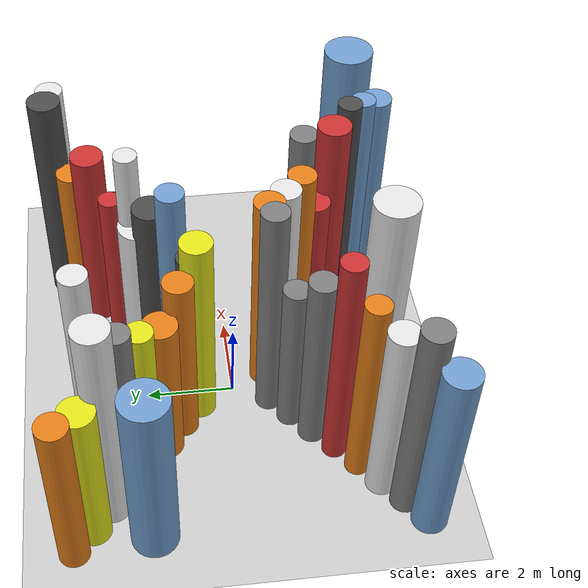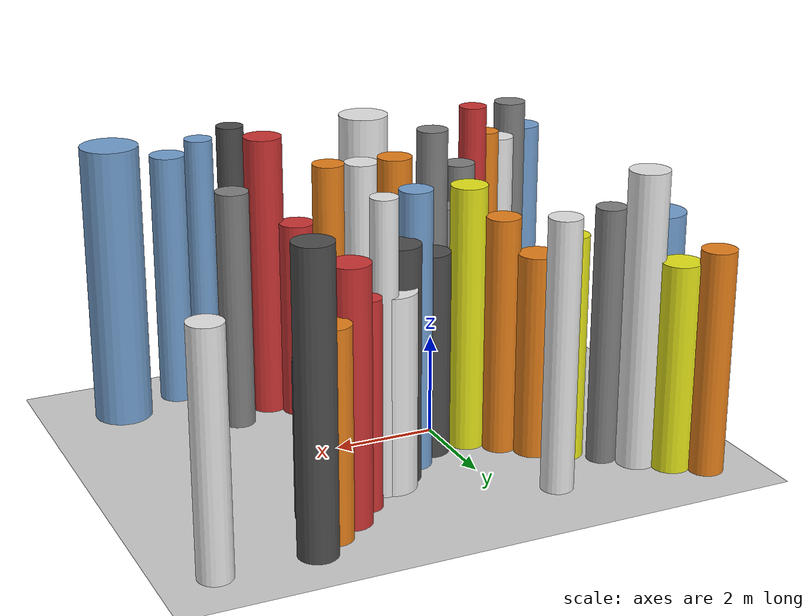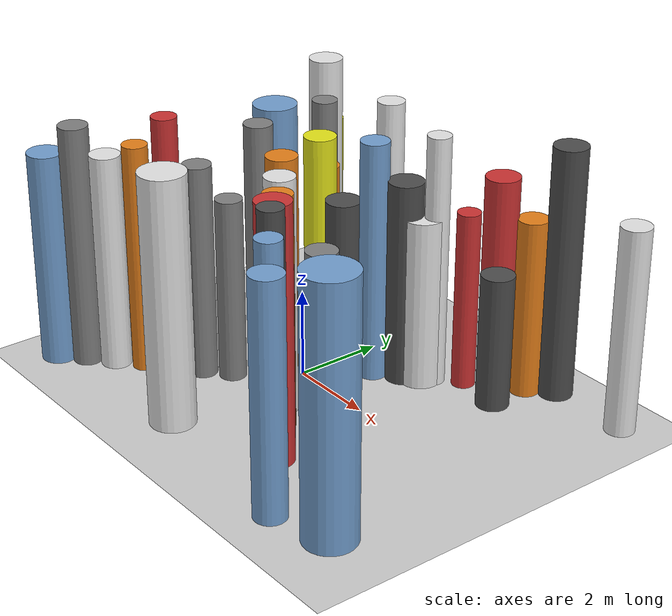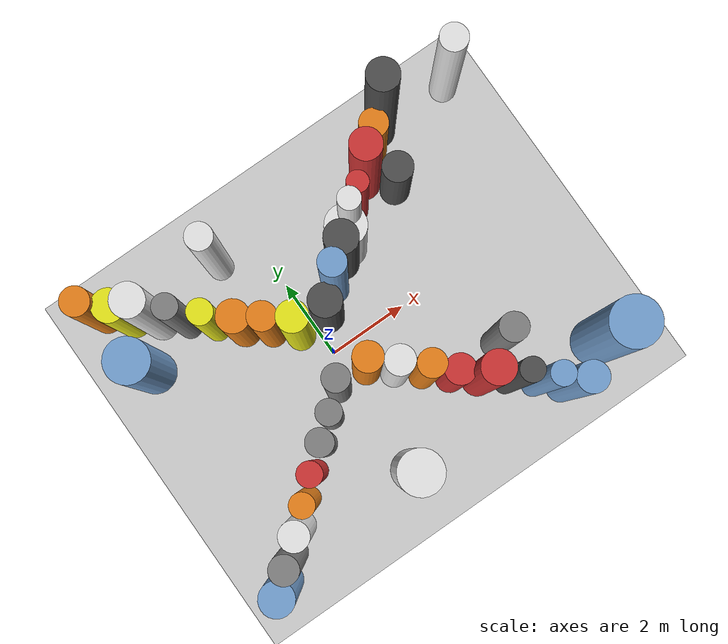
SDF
<?xml version='1.0'?>
<sdf version='1.6'>
  <world name='routeA_rl_v1__dense_recovery__rl_val__bottleneck_corridor__000102'>
    <!-- Sun light -->
    <light name='sun' type='directional'>
      <cast_shadows>1</cast_shadows>
      <pose>0 0 10 0 0 0</pose>
      <diffuse>0.8 0.8 0.8 1</diffuse>
      <specular>0.2 0.2 0.2 1</specular>
      <attenuation>
        <range>1000</range>
        <constant>0.9</constant>
        <linear>0.01</linear>
        <quadratic>0.001</quadratic>
      </attenuation>
      <direction>-0.5 0.1 -0.9</direction>
    </light>

    <!-- Ground plane -->
    <model name='ground_plane'>
      <static>1</static>
      <link name='link'>
        <collision name='collision'>
          <geometry>
            <plane>
              <normal>0 0 1</normal>
              <size>100 100</size>
            </plane>
          </geometry>
          <surface>
            <contact>
              <collide_bitmask>65535</collide_bitmask>
              <ode/>
            </contact>
            <friction>
              <ode>
                <mu>100</mu>
                <mu2>50</mu2>
              </ode>
              <torsional><ode/></torsional>
            </friction>
            <bounce/>
          </surface>
          <max_contacts>10</max_contacts>
        </collision>
        <visual name='visual'>
          <cast_shadows>0</cast_shadows>
          <geometry>
            <plane>
              <normal>0 0 1</normal>
              <size>100 100</size>
            </plane>
          </geometry>
          <material>
            <script>
              <uri>file://media/materials/scripts/gazebo.material</uri>
              <n>Gazebo/Grey</n>
            </script>
          </material>
        </visual>
      </link>
    </model>

    <!-- Environment -->
    <magnetic_field>6e-06 2.3e-05 -4.2e-05</magnetic_field>
    <atmosphere type='adiabatic'/>
    <physics name='default_physics' default='0' type='ode'>
      <gravity>0 0 -9.8</gravity>
      <max_step_size>0.004</max_step_size>
      <real_time_factor>1</real_time_factor>
      <real_time_update_rate>250</real_time_update_rate>
    </physics>
    <scene>
      <ambient>0.4 0.4 0.4 1</ambient>
      <background>0.7 0.7 0.7 1</background>
      <shadows>1</shadows>
    </scene>
    <wind/>
    <spherical_coordinates>
      <surface_model>EARTH_WGS84</surface_model>
      <latitude_deg>0</latitude_deg>
      <longitude_deg>0</longitude_deg>
      <elevation>0</elevation>
      <heading_deg>0</heading_deg>
    </spherical_coordinates>

    <!-- ============ OBSTACLES (40) ============ -->
    <model name='funnel_l_0'>
      <static>1</static>
      <link name='link'>
        <visual name='visual'>
          <geometry>
            <cylinder>
              <radius>0.3968</radius>
              <length>4.9211</length>
            </cylinder>
          </geometry>
          <material>
            <script>
              <n>Gazebo/Blue</n>
              <uri>file://media/materials/scripts/gazebo.material</uri>
            </script>
            <ambient>0.447 0.624 0.812 1</ambient>
          </material>
        </visual>
        <collision name='collision'>
          <geometry>
            <cylinder>
              <radius>0.3968</radius>
              <length>4.9211</length>
            </cylinder>
          </geometry>
          <max_contacts>10</max_contacts>
          <surface>
            <contact><ode/></contact>
            <bounce/>
            <friction>
              <ode><mu>1</mu><mu2>1</mu2></ode>
              <torsional><ode/></torsional>
            </friction>
          </surface>
        </collision>
      </link>
      <pose>-4.0000 -3.8000 2.4605 0 0 0.0000</pose>
    </model>

    <model name='funnel_r_0'>
      <static>1</static>
      <link name='link'>
        <visual name='visual'>
          <geometry>
            <cylinder>
              <radius>0.3395</radius>
              <length>4.4449</length>
            </cylinder>
          </geometry>
          <material>
            <script>
              <n>Gazebo/Orange</n>
              <uri>file://media/materials/scripts/gazebo.material</uri>
            </script>
            <ambient>0.9 0.5 0.1 1</ambient>
          </material>
        </visual>
        <collision name='collision'>
          <geometry>
            <cylinder>
              <radius>0.3395</radius>
              <length>4.4449</length>
            </cylinder>
          </geometry>
          <max_contacts>10</max_contacts>
          <surface>
            <contact><ode/></contact>
            <bounce/>
            <friction>
              <ode><mu>1</mu><mu2>1</mu2></ode>
              <torsional><ode/></torsional>
            </friction>
          </surface>
        </collision>
      </link>
      <pose>-4.0000 3.8000 2.2225 0 0 0.0000</pose>
    </model>

    <model name='funnel_l_1'>
      <static>1</static>
      <link name='link'>
        <visual name='visual'>
          <geometry>
            <cylinder>
              <radius>0.3291</radius>
              <length>5.5863</length>
            </cylinder>
          </geometry>
          <material>
            <script>
              <n>Gazebo/Grey</n>
              <uri>file://media/materials/scripts/gazebo.material</uri>
            </script>
            <ambient>0.5 0.5 0.5 1</ambient>
          </material>
        </visual>
        <collision name='collision'>
          <geometry>
            <cylinder>
              <radius>0.3291</radius>
              <length>5.5863</length>
            </cylinder>
          </geometry>
          <max_contacts>10</max_contacts>
          <surface>
            <contact><ode/></contact>
            <bounce/>
            <friction>
              <ode><mu>1</mu><mu2>1</mu2></ode>
              <torsional><ode/></torsional>
            </friction>
          </surface>
        </collision>
      </link>
      <pose>-3.4857 -3.3714 2.7931 0 0 0.0000</pose>
    </model>

    <model name='funnel_r_1'>
      <static>1</static>
      <link name='link'>
        <visual name='visual'>
          <geometry>
            <cylinder>
              <radius>0.3878</radius>
              <length>4.1424</length>
            </cylinder>
          </geometry>
          <material>
            <script>
              <n>Gazebo/Yellow</n>
              <uri>file://media/materials/scripts/gazebo.material</uri>
            </script>
            <ambient>0.9 0.9 0.1 1</ambient>
          </material>
        </visual>
        <collision name='collision'>
          <geometry>
            <cylinder>
              <radius>0.3878</radius>
              <length>4.1424</length>
            </cylinder>
          </geometry>
          <max_contacts>10</max_contacts>
          <surface>
            <contact><ode/></contact>
            <bounce/>
            <friction>
              <ode><mu>1</mu><mu2>1</mu2></ode>
              <torsional><ode/></torsional>
            </friction>
          </surface>
        </collision>
      </link>
      <pose>-3.4857 3.3714 2.0712 0 0 0.0000</pose>
    </model>

    <model name='funnel_l_2'>
      <static>1</static>
      <link name='link'>
        <visual name='visual'>
          <geometry>
            <cylinder>
              <radius>0.3425</radius>
              <length>4.9917</length>
            </cylinder>
          </geometry>
          <material>
            <script>
              <n>Gazebo/White</n>
              <uri>file://media/materials/scripts/gazebo.material</uri>
            </script>
            <ambient>0.9 0.9 0.9 1</ambient>
          </material>
        </visual>
        <collision name='collision'>
          <geometry>
            <cylinder>
              <radius>0.3425</radius>
              <length>4.9917</length>
            </cylinder>
          </geometry>
          <max_contacts>10</max_contacts>
          <surface>
            <contact><ode/></contact>
            <bounce/>
            <friction>
              <ode><mu>1</mu><mu2>1</mu2></ode>
              <torsional><ode/></torsional>
            </friction>
          </surface>
        </collision>
      </link>
      <pose>-2.9714 -2.9429 2.4958 0 0 0.0000</pose>
    </model>

    <model name='funnel_r_2'>
      <static>1</static>
      <link name='link'>
        <visual name='visual'>
          <geometry>
            <cylinder>
              <radius>0.3866</radius>
              <length>5.8515</length>
            </cylinder>
          </geometry>
          <material>
            <script>
              <n>Gazebo/White</n>
              <uri>file://media/materials/scripts/gazebo.material</uri>
            </script>
            <ambient>0.9 0.9 0.9 1</ambient>
          </material>
        </visual>
        <collision name='collision'>
          <geometry>
            <cylinder>
              <radius>0.3866</radius>
              <length>5.8515</length>
            </cylinder>
          </geometry>
          <max_contacts>10</max_contacts>
          <surface>
            <contact><ode/></contact>
            <bounce/>
            <friction>
              <ode><mu>1</mu><mu2>1</mu2></ode>
              <torsional><ode/></torsional>
            </friction>
          </surface>
        </collision>
      </link>
      <pose>-2.9714 2.9429 2.9257 0 0 0.0000</pose>
    </model>

    <model name='funnel_l_3'>
      <static>1</static>
      <link name='link'>
        <visual name='visual'>
          <geometry>
            <cylinder>
              <radius>0.2815</radius>
              <length>5.2719</length>
            </cylinder>
          </geometry>
          <material>
            <script>
              <n>Gazebo/Orange</n>
              <uri>file://media/materials/scripts/gazebo.material</uri>
            </script>
            <ambient>0.9 0.5 0.1 1</ambient>
          </material>
        </visual>
        <collision name='collision'>
          <geometry>
            <cylinder>
              <radius>0.2815</radius>
              <length>5.2719</length>
            </cylinder>
          </geometry>
          <max_contacts>10</max_contacts>
          <surface>
            <contact><ode/></contact>
            <bounce/>
            <friction>
              <ode><mu>1</mu><mu2>1</mu2></ode>
              <torsional><ode/></torsional>
            </friction>
          </surface>
        </collision>
      </link>
      <pose>-2.4571 -2.5143 2.6360 0 0 0.0000</pose>
    </model>

    <model name='funnel_r_3'>
      <static>1</static>
      <link name='link'>
        <visual name='visual'>
          <geometry>
            <cylinder>
              <radius>0.2930</radius>
              <length>5.0929</length>
            </cylinder>
          </geometry>
          <material>
            <script>
              <n>Gazebo/Grey</n>
              <uri>file://media/materials/scripts/gazebo.material</uri>
            </script>
            <ambient>0.5 0.5 0.5 1</ambient>
          </material>
        </visual>
        <collision name='collision'>
          <geometry>
            <cylinder>
              <radius>0.2930</radius>
              <length>5.0929</length>
            </cylinder>
          </geometry>
          <max_contacts>10</max_contacts>
          <surface>
            <contact><ode/></contact>
            <bounce/>
            <friction>
              <ode><mu>1</mu><mu2>1</mu2></ode>
              <torsional><ode/></torsional>
            </friction>
          </surface>
        </collision>
      </link>
      <pose>-2.4571 2.5143 2.5464 0 0 0.0000</pose>
    </model>

    <model name='funnel_l_4'>
      <static>1</static>
      <link name='link'>
        <visual name='visual'>
          <geometry>
            <cylinder>
              <radius>0.2793</radius>
              <length>5.9567</length>
            </cylinder>
          </geometry>
          <material>
            <script>
              <n>Gazebo/Red</n>
              <uri>file://media/materials/scripts/gazebo.material</uri>
            </script>
            <ambient>0.8 0.2 0.2 1</ambient>
          </material>
        </visual>
        <collision name='collision'>
          <geometry>
            <cylinder>
              <radius>0.2793</radius>
              <length>5.9567</length>
            </cylinder>
          </geometry>
          <max_contacts>10</max_contacts>
          <surface>
            <contact><ode/></contact>
            <bounce/>
            <friction>
              <ode><mu>1</mu><mu2>1</mu2></ode>
              <torsional><ode/></torsional>
            </friction>
          </surface>
        </collision>
      </link>
      <pose>-1.9429 -2.0857 2.9784 0 0 0.0000</pose>
    </model>

    <model name='funnel_r_4'>
      <static>1</static>
      <link name='link'>
        <visual name='visual'>
          <geometry>
            <cylinder>
              <radius>0.3004</radius>
              <length>4.4924</length>
            </cylinder>
          </geometry>
          <material>
            <script>
              <n>Gazebo/Yellow</n>
              <uri>file://media/materials/scripts/gazebo.material</uri>
            </script>
            <ambient>0.9 0.9 0.1 1</ambient>
          </material>
        </visual>
        <collision name='collision'>
          <geometry>
            <cylinder>
              <radius>0.3004</radius>
              <length>4.4924</length>
            </cylinder>
          </geometry>
          <max_contacts>10</max_contacts>
          <surface>
            <contact><ode/></contact>
            <bounce/>
            <friction>
              <ode><mu>1</mu><mu2>1</mu2></ode>
              <torsional><ode/></torsional>
            </friction>
          </surface>
        </collision>
      </link>
      <pose>-1.9429 2.0857 2.2462 0 0 0.0000</pose>
    </model>

    <model name='funnel_l_5'>
      <static>1</static>
      <link name='link'>
        <visual name='visual'>
          <geometry>
            <cylinder>
              <radius>0.3174</radius>
              <length>4.9430</length>
            </cylinder>
          </geometry>
          <material>
            <script>
              <n>Gazebo/Grey</n>
              <uri>file://media/materials/scripts/gazebo.material</uri>
            </script>
            <ambient>0.5 0.5 0.5 1</ambient>
          </material>
        </visual>
        <collision name='collision'>
          <geometry>
            <cylinder>
              <radius>0.3174</radius>
              <length>4.9430</length>
            </cylinder>
          </geometry>
          <max_contacts>10</max_contacts>
          <surface>
            <contact><ode/></contact>
            <bounce/>
            <friction>
              <ode><mu>1</mu><mu2>1</mu2></ode>
              <torsional><ode/></torsional>
            </friction>
          </surface>
        </collision>
      </link>
      <pose>-1.4286 -1.6571 2.4715 0 0 0.0000</pose>
    </model>

    <model name='funnel_r_5'>
      <static>1</static>
      <link name='link'>
        <visual name='visual'>
          <geometry>
            <cylinder>
              <radius>0.3835</radius>
              <length>4.0673</length>
            </cylinder>
          </geometry>
          <material>
            <script>
              <n>Gazebo/Orange</n>
              <uri>file://media/materials/scripts/gazebo.material</uri>
            </script>
            <ambient>0.9 0.5 0.1 1</ambient>
          </material>
        </visual>
        <collision name='collision'>
          <geometry>
            <cylinder>
              <radius>0.3835</radius>
              <length>4.0673</length>
            </cylinder>
          </geometry>
          <max_contacts>10</max_contacts>
          <surface>
            <contact><ode/></contact>
            <bounce/>
            <friction>
              <ode><mu>1</mu><mu2>1</mu2></ode>
              <torsional><ode/></torsional>
            </friction>
          </surface>
        </collision>
      </link>
      <pose>-1.4286 1.6571 2.0337 0 0 0.0000</pose>
    </model>

    <model name='funnel_l_6'>
      <static>1</static>
      <link name='link'>
        <visual name='visual'>
          <geometry>
            <cylinder>
              <radius>0.3024</radius>
              <length>4.2262</length>
            </cylinder>
          </geometry>
          <material>
            <script>
              <n>Gazebo/Grey</n>
              <uri>file://media/materials/scripts/gazebo.material</uri>
            </script>
            <ambient>0.5 0.5 0.5 1</ambient>
          </material>
        </visual>
        <collision name='collision'>
          <geometry>
            <cylinder>
              <radius>0.3024</radius>
              <length>4.2262</length>
            </cylinder>
          </geometry>
          <max_contacts>10</max_contacts>
          <surface>
            <contact><ode/></contact>
            <bounce/>
            <friction>
              <ode><mu>1</mu><mu2>1</mu2></ode>
              <torsional><ode/></torsional>
            </friction>
          </surface>
        </collision>
      </link>
      <pose>-0.9143 -1.2286 2.1131 0 0 0.0000</pose>
    </model>

    <model name='funnel_r_6'>
      <static>1</static>
      <link name='link'>
        <visual name='visual'>
          <geometry>
            <cylinder>
              <radius>0.3346</radius>
              <length>4.7329</length>
            </cylinder>
          </geometry>
          <material>
            <script>
              <n>Gazebo/Orange</n>
              <uri>file://media/materials/scripts/gazebo.material</uri>
            </script>
            <ambient>0.9 0.5 0.1 1</ambient>
          </material>
        </visual>
        <collision name='collision'>
          <geometry>
            <cylinder>
              <radius>0.3346</radius>
              <length>4.7329</length>
            </cylinder>
          </geometry>
          <max_contacts>10</max_contacts>
          <surface>
            <contact><ode/></contact>
            <bounce/>
            <friction>
              <ode><mu>1</mu><mu2>1</mu2></ode>
              <torsional><ode/></torsional>
            </friction>
          </surface>
        </collision>
      </link>
      <pose>-0.9143 1.2286 2.3665 0 0 0.0000</pose>
    </model>

    <model name='funnel_l_7'>
      <static>1</static>
      <link name='link'>
        <visual name='visual'>
          <geometry>
            <cylinder>
              <radius>0.3079</radius>
              <length>5.9701</length>
            </cylinder>
          </geometry>
          <material>
            <script>
              <n>Gazebo/Grey</n>
              <uri>file://media/materials/scripts/gazebo.material</uri>
            </script>
            <ambient>0.5 0.5 0.5 1</ambient>
          </material>
        </visual>
        <collision name='collision'>
          <geometry>
            <cylinder>
              <radius>0.3079</radius>
              <length>5.9701</length>
            </cylinder>
          </geometry>
          <max_contacts>10</max_contacts>
          <surface>
            <contact><ode/></contact>
            <bounce/>
            <friction>
              <ode><mu>1</mu><mu2>1</mu2></ode>
              <torsional><ode/></torsional>
            </friction>
          </surface>
        </collision>
      </link>
      <pose>-0.4000 -0.8000 2.9851 0 0 0.0000</pose>
    </model>

    <model name='funnel_r_7'>
      <static>1</static>
      <link name='link'>
        <visual name='visual'>
          <geometry>
            <cylinder>
              <radius>0.3576</radius>
              <length>5.3016</length>
            </cylinder>
          </geometry>
          <material>
            <script>
              <n>Gazebo/Yellow</n>
              <uri>file://media/materials/scripts/gazebo.material</uri>
            </script>
            <ambient>0.9 0.9 0.1 1</ambient>
          </material>
        </visual>
        <collision name='collision'>
          <geometry>
            <cylinder>
              <radius>0.3576</radius>
              <length>5.3016</length>
            </cylinder>
          </geometry>
          <max_contacts>10</max_contacts>
          <surface>
            <contact><ode/></contact>
            <bounce/>
            <friction>
              <ode><mu>1</mu><mu2>1</mu2></ode>
              <torsional><ode/></torsional>
            </friction>
          </surface>
        </collision>
      </link>
      <pose>-0.4000 0.8000 2.6508 0 0 0.0000</pose>
    </model>

    <model name='funnel_out_l_0'>
      <static>1</static>
      <link name='link'>
        <visual name='visual'>
          <geometry>
            <cylinder>
              <radius>0.3413</radius>
              <length>5.5217</length>
            </cylinder>
          </geometry>
          <material>
            <script>
              <n>Gazebo/Orange</n>
              <uri>file://media/materials/scripts/gazebo.material</uri>
            </script>
            <ambient>0.9 0.5 0.1 1</ambient>
          </material>
        </visual>
        <collision name='collision'>
          <geometry>
            <cylinder>
              <radius>0.3413</radius>
              <length>5.5217</length>
            </cylinder>
          </geometry>
          <max_contacts>10</max_contacts>
          <surface>
            <contact><ode/></contact>
            <bounce/>
            <friction>
              <ode><mu>1</mu><mu2>1</mu2></ode>
              <torsional><ode/></torsional>
            </friction>
          </surface>
        </collision>
      </link>
      <pose>0.4000 -0.8000 2.7609 0 0 0.0000</pose>
    </model>

    <model name='funnel_out_r_0'>
      <static>1</static>
      <link name='link'>
        <visual name='visual'>
          <geometry>
            <cylinder>
              <radius>0.3921</radius>
              <length>4.0987</length>
            </cylinder>
          </geometry>
          <material>
            <script>
              <n>Gazebo/DarkGrey</n>
              <uri>file://media/materials/scripts/gazebo.material</uri>
            </script>
            <ambient>0.3 0.3 0.3 1</ambient>
          </material>
        </visual>
        <collision name='collision'>
          <geometry>
            <cylinder>
              <radius>0.3921</radius>
              <length>4.0987</length>
            </cylinder>
          </geometry>
          <max_contacts>10</max_contacts>
          <surface>
            <contact><ode/></contact>
            <bounce/>
            <friction>
              <ode><mu>1</mu><mu2>1</mu2></ode>
              <torsional><ode/></torsional>
            </friction>
          </surface>
        </collision>
      </link>
      <pose>0.4000 0.8000 2.0493 0 0 0.0000</pose>
    </model>

    <model name='funnel_out_l_1'>
      <static>1</static>
      <link name='link'>
        <visual name='visual'>
          <geometry>
            <cylinder>
              <radius>0.3392</radius>
              <length>5.3638</length>
            </cylinder>
          </geometry>
          <material>
            <script>
              <n>Gazebo/White</n>
              <uri>file://media/materials/scripts/gazebo.material</uri>
            </script>
            <ambient>0.9 0.9 0.9 1</ambient>
          </material>
        </visual>
        <collision name='collision'>
          <geometry>
            <cylinder>
              <radius>0.3392</radius>
              <length>5.3638</length>
            </cylinder>
          </geometry>
          <max_contacts>10</max_contacts>
          <surface>
            <contact><ode/></contact>
            <bounce/>
            <friction>
              <ode><mu>1</mu><mu2>1</mu2></ode>
              <torsional><ode/></torsional>
            </friction>
          </surface>
        </collision>
      </link>
      <pose>0.9143 -1.2286 2.6819 0 0 0.0000</pose>
    </model>

    <model name='funnel_out_r_1'>
      <static>1</static>
      <link name='link'>
        <visual name='visual'>
          <geometry>
            <cylinder>
              <radius>0.3213</radius>
              <length>5.5087</length>
            </cylinder>
          </geometry>
          <material>
            <script>
              <n>Gazebo/Blue</n>
              <uri>file://media/materials/scripts/gazebo.material</uri>
            </script>
            <ambient>0.447 0.624 0.812 1</ambient>
          </material>
        </visual>
        <collision name='collision'>
          <geometry>
            <cylinder>
              <radius>0.3213</radius>
              <length>5.5087</length>
            </cylinder>
          </geometry>
          <max_contacts>10</max_contacts>
          <surface>
            <contact><ode/></contact>
            <bounce/>
            <friction>
              <ode><mu>1</mu><mu2>1</mu2></ode>
              <torsional><ode/></torsional>
            </friction>
          </surface>
        </collision>
      </link>
      <pose>0.9143 1.2286 2.7544 0 0 0.0000</pose>
    </model>

    <model name='funnel_out_l_2'>
      <static>1</static>
      <link name='link'>
        <visual name='visual'>
          <geometry>
            <cylinder>
              <radius>0.3235</radius>
              <length>5.2783</length>
            </cylinder>
          </geometry>
          <material>
            <script>
              <n>Gazebo/Orange</n>
              <uri>file://media/materials/scripts/gazebo.material</uri>
            </script>
            <ambient>0.9 0.5 0.1 1</ambient>
          </material>
        </visual>
        <collision name='collision'>
          <geometry>
            <cylinder>
              <radius>0.3235</radius>
              <length>5.2783</length>
            </cylinder>
          </geometry>
          <max_contacts>10</max_contacts>
          <surface>
            <contact><ode/></contact>
            <bounce/>
            <friction>
              <ode><mu>1</mu><mu2>1</mu2></ode>
              <torsional><ode/></torsional>
            </friction>
          </surface>
        </collision>
      </link>
      <pose>1.4286 -1.6571 2.6392 0 0 0.0000</pose>
    </model>

    <model name='funnel_out_r_2'>
      <static>1</static>
      <link name='link'>
        <visual name='visual'>
          <geometry>
            <cylinder>
              <radius>0.3944</radius>
              <length>4.6659</length>
            </cylinder>
          </geometry>
          <material>
            <script>
              <n>Gazebo/DarkGrey</n>
              <uri>file://media/materials/scripts/gazebo.material</uri>
            </script>
            <ambient>0.3 0.3 0.3 1</ambient>
          </material>
        </visual>
        <collision name='collision'>
          <geometry>
            <cylinder>
              <radius>0.3944</radius>
              <length>4.6659</length>
            </cylinder>
          </geometry>
          <max_contacts>10</max_contacts>
          <surface>
            <contact><ode/></contact>
            <bounce/>
            <friction>
              <ode><mu>1</mu><mu2>1</mu2></ode>
              <torsional><ode/></torsional>
            </friction>
          </surface>
        </collision>
      </link>
      <pose>1.4286 1.6571 2.3330 0 0 0.0000</pose>
    </model>

    <model name='funnel_out_l_3'>
      <static>1</static>
      <link name='link'>
        <visual name='visual'>
          <geometry>
            <cylinder>
              <radius>0.3538</radius>
              <length>4.0185</length>
            </cylinder>
          </geometry>
          <material>
            <script>
              <n>Gazebo/Red</n>
              <uri>file://media/materials/scripts/gazebo.material</uri>
            </script>
            <ambient>0.8 0.2 0.2 1</ambient>
          </material>
        </visual>
        <collision name='collision'>
          <geometry>
            <cylinder>
              <radius>0.3538</radius>
              <length>4.0185</length>
            </cylinder>
          </geometry>
          <max_contacts>10</max_contacts>
          <surface>
            <contact><ode/></contact>
            <bounce/>
            <friction>
              <ode><mu>1</mu><mu2>1</mu2></ode>
              <torsional><ode/></torsional>
            </friction>
          </surface>
        </collision>
      </link>
      <pose>1.9429 -2.0857 2.0092 0 0 0.0000</pose>
    </model>

    <model name='funnel_out_r_3'>
      <static>1</static>
      <link name='link'>
        <visual name='visual'>
          <geometry>
            <cylinder>
              <radius>0.2613</radius>
              <length>5.7425</length>
            </cylinder>
          </geometry>
          <material>
            <script>
              <n>Gazebo/White</n>
              <uri>file://media/materials/scripts/gazebo.material</uri>
            </script>
            <ambient>0.9 0.9 0.9 1</ambient>
          </material>
        </visual>
        <collision name='collision'>
          <geometry>
            <cylinder>
              <radius>0.2613</radius>
              <length>5.7425</length>
            </cylinder>
          </geometry>
          <max_contacts>10</max_contacts>
          <surface>
            <contact><ode/></contact>
            <bounce/>
            <friction>
              <ode><mu>1</mu><mu2>1</mu2></ode>
              <torsional><ode/></torsional>
            </friction>
          </surface>
        </collision>
      </link>
      <pose>1.9429 2.0857 2.8713 0 0 0.0000</pose>
    </model>

    <model name='funnel_out_l_4'>
      <static>1</static>
      <link name='link'>
        <visual name='visual'>
          <geometry>
            <cylinder>
              <radius>0.3834</radius>
              <length>5.7314</length>
            </cylinder>
          </geometry>
          <material>
            <script>
              <n>Gazebo/Red</n>
              <uri>file://media/materials/scripts/gazebo.material</uri>
            </script>
            <ambient>0.8 0.2 0.2 1</ambient>
          </material>
        </visual>
        <collision name='collision'>
          <geometry>
            <cylinder>
              <radius>0.3834</radius>
              <length>5.7314</length>
            </cylinder>
          </geometry>
          <max_contacts>10</max_contacts>
          <surface>
            <contact><ode/></contact>
            <bounce/>
            <friction>
              <ode><mu>1</mu><mu2>1</mu2></ode>
              <torsional><ode/></torsional>
            </friction>
          </surface>
        </collision>
      </link>
      <pose>2.4571 -2.5143 2.8657 0 0 0.0000</pose>
    </model>

    <model name='funnel_out_r_4'>
      <static>1</static>
      <link name='link'>
        <visual name='visual'>
          <geometry>
            <cylinder>
              <radius>0.2587</radius>
              <length>4.0836</length>
            </cylinder>
          </geometry>
          <material>
            <script>
              <n>Gazebo/Red</n>
              <uri>file://media/materials/scripts/gazebo.material</uri>
            </script>
            <ambient>0.8 0.2 0.2 1</ambient>
          </material>
        </visual>
        <collision name='collision'>
          <geometry>
            <cylinder>
              <radius>0.2587</radius>
              <length>4.0836</length>
            </cylinder>
          </geometry>
          <max_contacts>10</max_contacts>
          <surface>
            <contact><ode/></contact>
            <bounce/>
            <friction>
              <ode><mu>1</mu><mu2>1</mu2></ode>
              <torsional><ode/></torsional>
            </friction>
          </surface>
        </collision>
      </link>
      <pose>2.4571 2.5143 2.0418 0 0 0.0000</pose>
    </model>

    <model name='funnel_out_l_5'>
      <static>1</static>
      <link name='link'>
        <visual name='visual'>
          <geometry>
            <cylinder>
              <radius>0.2722</radius>
              <length>5.8971</length>
            </cylinder>
          </geometry>
          <material>
            <script>
              <n>Gazebo/DarkGrey</n>
              <uri>file://media/materials/scripts/gazebo.material</uri>
            </script>
            <ambient>0.3 0.3 0.3 1</ambient>
          </material>
        </visual>
        <collision name='collision'>
          <geometry>
            <cylinder>
              <radius>0.2722</radius>
              <length>5.8971</length>
            </cylinder>
          </geometry>
          <max_contacts>10</max_contacts>
          <surface>
            <contact><ode/></contact>
            <bounce/>
            <friction>
              <ode><mu>1</mu><mu2>1</mu2></ode>
              <torsional><ode/></torsional>
            </friction>
          </surface>
        </collision>
      </link>
      <pose>2.9714 -2.9429 2.9485 0 0 0.0000</pose>
    </model>

    <model name='funnel_out_r_5'>
      <static>1</static>
      <link name='link'>
        <visual name='visual'>
          <geometry>
            <cylinder>
              <radius>0.3749</radius>
              <length>4.9559</length>
            </cylinder>
          </geometry>
          <material>
            <script>
              <n>Gazebo/Red</n>
              <uri>file://media/materials/scripts/gazebo.material</uri>
            </script>
            <ambient>0.8 0.2 0.2 1</ambient>
          </material>
        </visual>
        <collision name='collision'>
          <geometry>
            <cylinder>
              <radius>0.3749</radius>
              <length>4.9559</length>
            </cylinder>
          </geometry>
          <max_contacts>10</max_contacts>
          <surface>
            <contact><ode/></contact>
            <bounce/>
            <friction>
              <ode><mu>1</mu><mu2>1</mu2></ode>
              <torsional><ode/></torsional>
            </friction>
          </surface>
        </collision>
      </link>
      <pose>2.9714 2.9429 2.4780 0 0 0.0000</pose>
    </model>

    <model name='funnel_out_l_6'>
      <static>1</static>
      <link name='link'>
        <visual name='visual'>
          <geometry>
            <cylinder>
              <radius>0.2798</radius>
              <length>5.5867</length>
            </cylinder>
          </geometry>
          <material>
            <script>
              <n>Gazebo/Blue</n>
              <uri>file://media/materials/scripts/gazebo.material</uri>
            </script>
            <ambient>0.447 0.624 0.812 1</ambient>
          </material>
        </visual>
        <collision name='collision'>
          <geometry>
            <cylinder>
              <radius>0.2798</radius>
              <length>5.5867</length>
            </cylinder>
          </geometry>
          <max_contacts>10</max_contacts>
          <surface>
            <contact><ode/></contact>
            <bounce/>
            <friction>
              <ode><mu>1</mu><mu2>1</mu2></ode>
              <torsional><ode/></torsional>
            </friction>
          </surface>
        </collision>
      </link>
      <pose>3.4857 -3.3714 2.7933 0 0 0.0000</pose>
    </model>

    <model name='funnel_out_r_6'>
      <static>1</static>
      <link name='link'>
        <visual name='visual'>
          <geometry>
            <cylinder>
              <radius>0.3367</radius>
              <length>4.0695</length>
            </cylinder>
          </geometry>
          <material>
            <script>
              <n>Gazebo/Orange</n>
              <uri>file://media/materials/scripts/gazebo.material</uri>
            </script>
            <ambient>0.9 0.5 0.1 1</ambient>
          </material>
        </visual>
        <collision name='collision'>
          <geometry>
            <cylinder>
              <radius>0.3367</radius>
              <length>4.0695</length>
            </cylinder>
          </geometry>
          <max_contacts>10</max_contacts>
          <surface>
            <contact><ode/></contact>
            <bounce/>
            <friction>
              <ode><mu>1</mu><mu2>1</mu2></ode>
              <torsional><ode/></torsional>
            </friction>
          </surface>
        </collision>
      </link>
      <pose>3.4857 3.3714 2.0347 0 0 0.0000</pose>
    </model>

    <model name='funnel_out_l_7'>
      <static>1</static>
      <link name='link'>
        <visual name='visual'>
          <geometry>
            <cylinder>
              <radius>0.3581</radius>
              <length>5.2077</length>
            </cylinder>
          </geometry>
          <material>
            <script>
              <n>Gazebo/Blue</n>
              <uri>file://media/materials/scripts/gazebo.material</uri>
            </script>
            <ambient>0.447 0.624 0.812 1</ambient>
          </material>
        </visual>
        <collision name='collision'>
          <geometry>
            <cylinder>
              <radius>0.3581</radius>
              <length>5.2077</length>
            </cylinder>
          </geometry>
          <max_contacts>10</max_contacts>
          <surface>
            <contact><ode/></contact>
            <bounce/>
            <friction>
              <ode><mu>1</mu><mu2>1</mu2></ode>
              <torsional><ode/></torsional>
            </friction>
          </surface>
        </collision>
      </link>
      <pose>4.0000 -3.8000 2.6039 0 0 0.0000</pose>
    </model>

    <model name='funnel_out_r_7'>
      <static>1</static>
      <link name='link'>
        <visual name='visual'>
          <geometry>
            <cylinder>
              <radius>0.3764</radius>
              <length>5.7527</length>
            </cylinder>
          </geometry>
          <material>
            <script>
              <n>Gazebo/DarkGrey</n>
              <uri>file://media/materials/scripts/gazebo.material</uri>
            </script>
            <ambient>0.3 0.3 0.3 1</ambient>
          </material>
        </visual>
        <collision name='collision'>
          <geometry>
            <cylinder>
              <radius>0.3764</radius>
              <length>5.7527</length>
            </cylinder>
          </geometry>
          <max_contacts>10</max_contacts>
          <surface>
            <contact><ode/></contact>
            <bounce/>
            <friction>
              <ode><mu>1</mu><mu2>1</mu2></ode>
              <torsional><ode/></torsional>
            </friction>
          </surface>
        </collision>
      </link>
      <pose>4.0000 3.8000 2.8764 0 0 0.0000</pose>
    </model>

    <model name='bn_scatter_0'>
      <static>1</static>
      <link name='link'>
        <visual name='visual'>
          <geometry>
            <cylinder>
              <radius>0.3150</radius>
              <length>5.3170</length>
            </cylinder>
          </geometry>
          <material>
            <script>
              <n>Gazebo/White</n>
              <uri>file://media/materials/scripts/gazebo.material</uri>
            </script>
            <ambient>0.9 0.9 0.9 1</ambient>
          </material>
        </visual>
        <collision name='collision'>
          <geometry>
            <cylinder>
              <radius>0.3150</radius>
              <length>5.3170</length>
            </cylinder>
          </geometry>
          <max_contacts>10</max_contacts>
          <surface>
            <contact><ode/></contact>
            <bounce/>
            <friction>
              <ode><mu>1</mu><mu2>1</mu2></ode>
              <torsional><ode/></torsional>
            </friction>
          </surface>
        </collision>
      </link>
      <pose>-1.0422 3.2813 2.6585 0 0 0.0000</pose>
    </model>

    <model name='bn_scatter_1'>
      <static>1</static>
      <link name='link'>
        <visual name='visual'>
          <geometry>
            <cylinder>
              <radius>0.3662</radius>
              <length>3.0699</length>
            </cylinder>
          </geometry>
          <material>
            <script>
              <n>Gazebo/DarkGrey</n>
              <uri>file://media/materials/scripts/gazebo.material</uri>
            </script>
            <ambient>0.3 0.3 0.3 1</ambient>
          </material>
        </visual>
        <collision name='collision'>
          <geometry>
            <cylinder>
              <radius>0.3662</radius>
              <length>3.0699</length>
            </cylinder>
          </geometry>
          <max_contacts>10</max_contacts>
          <surface>
            <contact><ode/></contact>
            <bounce/>
            <friction>
              <ode><mu>1</mu><mu2>1</mu2></ode>
              <torsional><ode/></torsional>
            </friction>
          </surface>
        </collision>
      </link>
      <pose>3.4931 2.4232 1.5350 0 0 0.0000</pose>
    </model>

    <model name='bn_scatter_2'>
      <static>1</static>
      <link name='link'>
        <visual name='visual'>
          <geometry>
            <cylinder>
              <radius>0.5225</radius>
              <length>4.7035</length>
            </cylinder>
          </geometry>
          <material>
            <script>
              <n>Gazebo/Blue</n>
              <uri>file://media/materials/scripts/gazebo.material</uri>
            </script>
            <ambient>0.447 0.624 0.812 1</ambient>
          </material>
        </visual>
        <collision name='collision'>
          <geometry>
            <cylinder>
              <radius>0.5225</radius>
              <length>4.7035</length>
            </cylinder>
          </geometry>
          <max_contacts>10</max_contacts>
          <surface>
            <contact><ode/></contact>
            <bounce/>
            <friction>
              <ode><mu>1</mu><mu2>1</mu2></ode>
              <torsional><ode/></torsional>
            </friction>
          </surface>
        </collision>
      </link>
      <pose>-3.7810 2.0857 2.3517 0 0 0.0000</pose>
    </model>

    <model name='bn_scatter_3'>
      <static>1</static>
      <link name='link'>
        <visual name='visual'>
          <geometry>
            <cylinder>
              <radius>0.4834</radius>
              <length>3.9021</length>
            </cylinder>
          </geometry>
          <material>
            <script>
              <n>Gazebo/White</n>
              <uri>file://media/materials/scripts/gazebo.material</uri>
            </script>
            <ambient>0.9 0.9 0.9 1</ambient>
          </material>
        </visual>
        <collision name='collision'>
          <geometry>
            <cylinder>
              <radius>0.4834</radius>
              <length>3.9021</length>
            </cylinder>
          </geometry>
          <max_contacts>10</max_contacts>
          <surface>
            <contact><ode/></contact>
            <bounce/>
            <friction>
              <ode><mu>1</mu><mu2>1</mu2></ode>
              <torsional><ode/></torsional>
            </friction>
          </surface>
        </collision>
      </link>
      <pose>1.7175 1.9060 1.9510 0 0 0.0000</pose>
    </model>

    <model name='bn_scatter_4'>
      <static>1</static>
      <link name='link'>
        <visual name='visual'>
          <geometry>
            <cylinder>
              <radius>0.3317</radius>
              <length>4.6674</length>
            </cylinder>
          </geometry>
          <material>
            <script>
              <n>Gazebo/White</n>
              <uri>file://media/materials/scripts/gazebo.material</uri>
            </script>
            <ambient>0.9 0.9 0.9 1</ambient>
          </material>
        </visual>
        <collision name='collision'>
          <geometry>
            <cylinder>
              <radius>0.3317</radius>
              <length>4.6674</length>
            </cylinder>
          </geometry>
          <max_contacts>10</max_contacts>
          <surface>
            <contact><ode/></contact>
            <bounce/>
            <friction>
              <ode><mu>1</mu><mu2>1</mu2></ode>
              <torsional><ode/></torsional>
            </friction>
          </surface>
        </collision>
      </link>
      <pose>5.8919 3.8035 2.3337 0 0 0.0000</pose>
    </model>

    <model name='bn_scatter_5'>
      <static>1</static>
      <link name='link'>
        <visual name='visual'>
          <geometry>
            <cylinder>
              <radius>0.3323</radius>
              <length>4.8631</length>
            </cylinder>
          </geometry>
          <material>
            <script>
              <n>Gazebo/Grey</n>
              <uri>file://media/materials/scripts/gazebo.material</uri>
            </script>
            <ambient>0.5 0.5 0.5 1</ambient>
          </material>
        </visual>
        <collision name='collision'>
          <geometry>
            <cylinder>
              <radius>0.3323</radius>
              <length>4.8631</length>
            </cylinder>
          </geometry>
          <max_contacts>10</max_contacts>
          <surface>
            <contact><ode/></contact>
            <bounce/>
            <friction>
              <ode><mu>1</mu><mu2>1</mu2></ode>
              <torsional><ode/></torsional>
            </friction>
          </surface>
        </collision>
      </link>
      <pose>3.3042 -2.0142 2.4316 0 0 0.0000</pose>
    </model>

    <model name='bn_scatter_6'>
      <static>1</static>
      <link name='link'>
        <visual name='visual'>
          <geometry>
            <cylinder>
              <radius>0.5086</radius>
              <length>5.6845</length>
            </cylinder>
          </geometry>
          <material>
            <script>
              <n>Gazebo/White</n>
              <uri>file://media/materials/scripts/gazebo.material</uri>
            </script>
            <ambient>0.9 0.9 0.9 1</ambient>
          </material>
        </visual>
        <collision name='collision'>
          <geometry>
            <cylinder>
              <radius>0.5086</radius>
              <length>5.6845</length>
            </cylinder>
          </geometry>
          <max_contacts>10</max_contacts>
          <surface>
            <contact><ode/></contact>
            <bounce/>
            <friction>
              <ode><mu>1</mu><mu2>1</mu2></ode>
              <torsional><ode/></torsional>
            </friction>
          </surface>
        </collision>
      </link>
      <pose>-0.0734 -3.3545 2.8423 0 0 0.0000</pose>
    </model>

    <model name='bn_scatter_7'>
      <static>1</static>
      <link name='link'>
        <visual name='visual'>
          <geometry>
            <cylinder>
              <radius>0.5739</radius>
              <length>5.6616</length>
            </cylinder>
          </geometry>
          <material>
            <script>
              <n>Gazebo/Blue</n>
              <uri>file://media/materials/scripts/gazebo.material</uri>
            </script>
            <ambient>0.447 0.624 0.812 1</ambient>
          </material>
        </visual>
        <collision name='collision'>
          <geometry>
            <cylinder>
              <radius>0.5739</radius>
              <length>5.6616</length>
            </cylinder>
          </geometry>
          <max_contacts>10</max_contacts>
          <surface>
            <contact><ode/></contact>
            <bounce/>
            <friction>
              <ode><mu>1</mu><mu2>1</mu2></ode>
              <torsional><ode/></torsional>
            </friction>
          </surface>
        </collision>
      </link>
      <pose>5.3019 -3.3612 2.8308 0 0 0.0000</pose>
    </model>

    <!-- GUI camera -->
    <gui fullscreen='0'>
      <camera name='user_camera'>
        <pose>-15 0 18 0 0.85 0.15</pose>
        <view_controller>orbit</view_controller>
        <projection_type>perspective</projection_type>
      </camera>
    </gui>
  </world>
</sdf>
